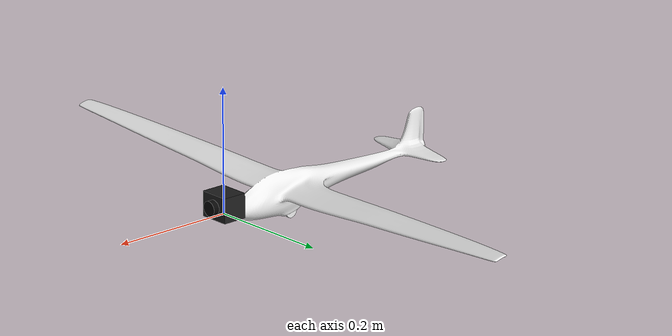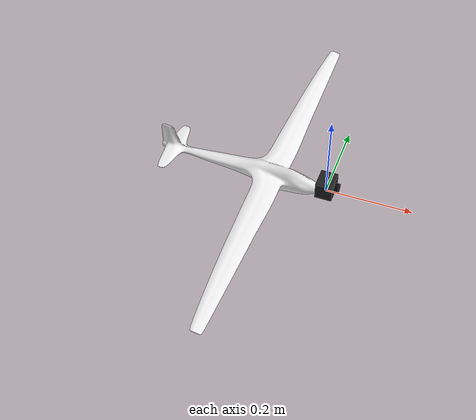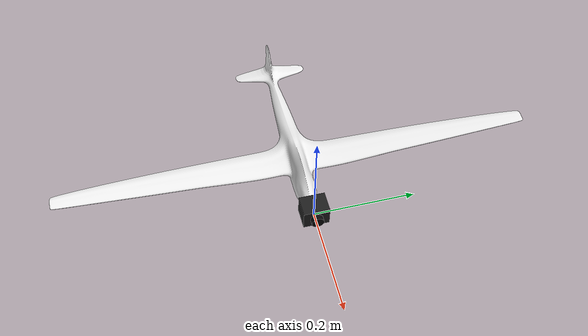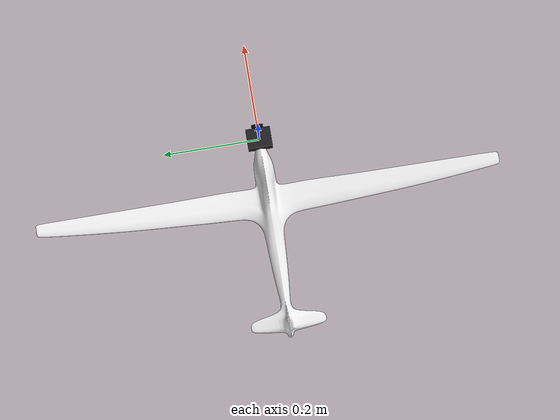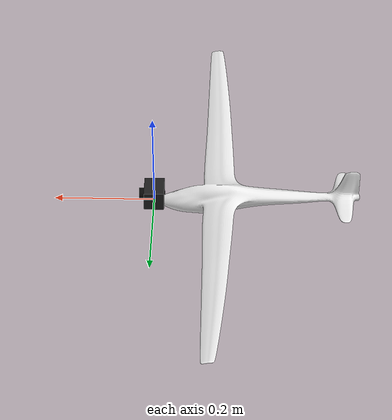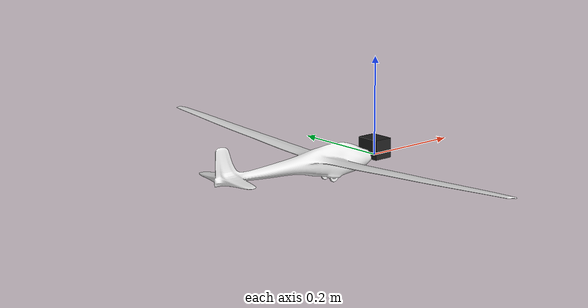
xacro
<?xml version="1.0"?>
<robot name="simple_airplane" xmlns:xacro="http://ros.org/wiki/xacro">

  <xacro:property name="mesh_scale_iso" value="0.1"/>
  <xacro:property name="mesh_scale" value="${mesh_scale_iso} ${mesh_scale_iso} ${mesh_scale_iso}"/>
  <xacro:property name="PI" value="3.1415926535897931"/>

  <link name="base_link">
    <origin xyz="0 0 0" rpy="0 0 0" />
  </link>

  <joint name="base_joint" type="fixed">
    <gravity>0</gravity>
    <origin xyz="0 0 0" rpy="0 0 0" />
    <parent link="base_link" />
    <child link="body_link" />
  </joint>

  <link name="body_link">
    <inertial>
      <mass value="0.1" />
      <origin xyz="0 0 0" />
      <inertia ixx="1" ixy="0" ixz="0" iyy="1" iyz="0" izz="1" />
    </inertial>

    <visual name="base_visual">
      <origin xyz="0 0 0" rpy="0 0 0" />
      <geometry name="pioneer_geom">
        <mesh filename="package://simple_airplane_description/meshes/simple_airplane.dae" scale="${mesh_scale}" />
      </geometry>

    </visual>

    <collision>
      <origin xyz="0 0 0" rpy="0 0 0" />
      <geometry>
        <mesh filename="package://simple_airplane_description/meshes/simple_airplane.dae" scale="${mesh_scale}" />
      </geometry>
    </collision>
  </link>

  <gazebo reference="base_link">
    <gravity>0</gravity>
    <material>
      Gazebo/White
    </material>
  </gazebo>

  <gazebo reference="body_link">
    <gravity>0</gravity>
     <material>
      Gazebo/White
    </material>
  </gazebo>

  <gazebo>
    <plugin name="object_controller" filename="libgazebo_ros_planar_move_with_banking_and_pitching_plugin1.so">
      <commandTopic>cmd_vel</commandTopic>
      <odometryTopic>odom</odometryTopic>
      <odometryFrame>odom</odometryFrame>
      <odometryRate>80.0</odometryRate>
      <robotBaseFrame>base_link</robotBaseFrame>
    </plugin>
  </gazebo>

<!-- lidar -->

<!-- camera -->

  <xacro:include filename="$(find simple_airplane_description)/urdf/simple_airplane_front_camera.xacro"/>
  <xacro:fixed_front_camera parent="base_link"/>
</robot>

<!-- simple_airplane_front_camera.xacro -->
<robot xmlns:xacro="http://ros.org/wiki/xacro">
  <!-- +X is the aircraft nose; optical +Z points along the viewing direction. -->
  <xacro:macro name="fixed_front_camera" params="parent prefix:='' gazebo_sensor:=true">
    <joint name="${prefix}front_camera_joint" type="fixed">
      <parent link="${parent}"/>
      <child link="${prefix}front_camera_link"/>
      <origin xyz="0.03 0 0.015" rpy="0 0 0"/>
    </joint>
    <link name="${prefix}front_camera_link">
      <visual name="front_camera_housing">
        <origin xyz="-0.03 0 0" rpy="0 0 0"/>
        <geometry><box size="0.04 0.05 0.04"/></geometry>
        <material name="FrontCameraHousing"><color rgba="0.12 0.12 0.12 1"/></material>
      </visual>
      <visual name="front_camera_lens">
        <origin xyz="-0.005 0 0" rpy="0 1.5707963267948966 0"/>
        <geometry><cylinder radius="0.012" length="0.01"/></geometry>
        <material name="FrontCameraLens"><color rgba="0.03 0.03 0.03 1"/></material>
      </visual>
    </link>
    <joint name="${prefix}front_camera_optical_joint" type="fixed">
      <parent link="${prefix}front_camera_link"/>
      <child link="${prefix}front_camera_optical_frame"/>
      <origin xyz="0 0 0" rpy="-1.5707963267948966 0 -1.5707963267948966"/>
    </joint>
    <link name="${prefix}front_camera_optical_frame"/>
    <xacro:if value="${gazebo_sensor}">
      <gazebo reference="${prefix}front_camera_link">
        <material>Gazebo/Black</material>
      </gazebo>
      <!-- Attach to the existing massive link: no camera mass or collision is added. -->
      <gazebo reference="${parent}">
        <sensor name="front_camera" type="camera">
          <pose>0.03 0 0.015 0 0 0</pose>
          <always_on>true</always_on>
          <update_rate>15</update_rate>
          <visualize>false</visualize>
          <camera name="front_camera">
            <horizontal_fov>1.5707963267948966</horizontal_fov>
            <image><width>640</width><height>360</height><format>R8G8B8</format></image>
            <clip><near>0.05</near><far>300</far></clip>
          </camera>
          <plugin name="front_camera_controller" filename="libgazebo_ros_camera.so">
            <robotNamespace>/suav1</robotNamespace>
            <cameraName>front_camera</cameraName>
            <imageTopicName>image_raw</imageTopicName>
            <cameraInfoTopicName>camera_info</cameraInfoTopicName>
            <frameName>front_camera_optical_frame</frameName>
            <updateRate>15.0</updateRate>
          </plugin>
        </sensor>
      </gazebo>
    </xacro:if>
  </xacro:macro>
</robot>
